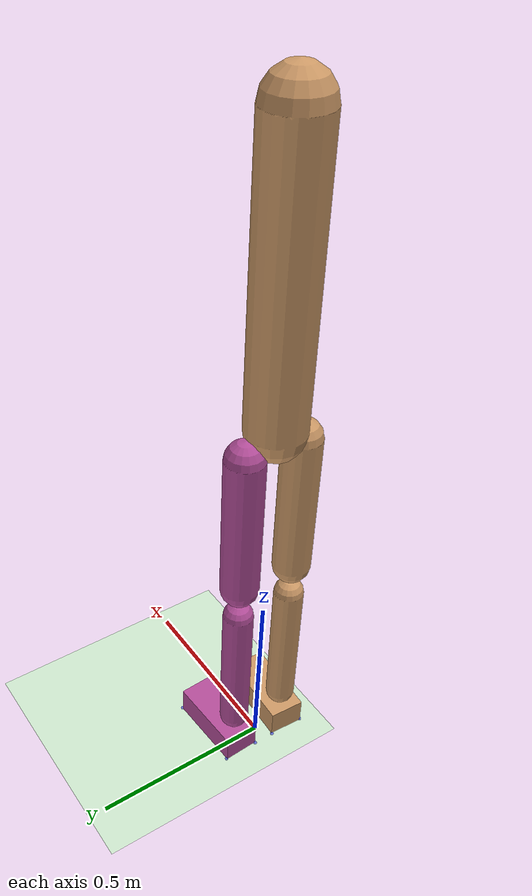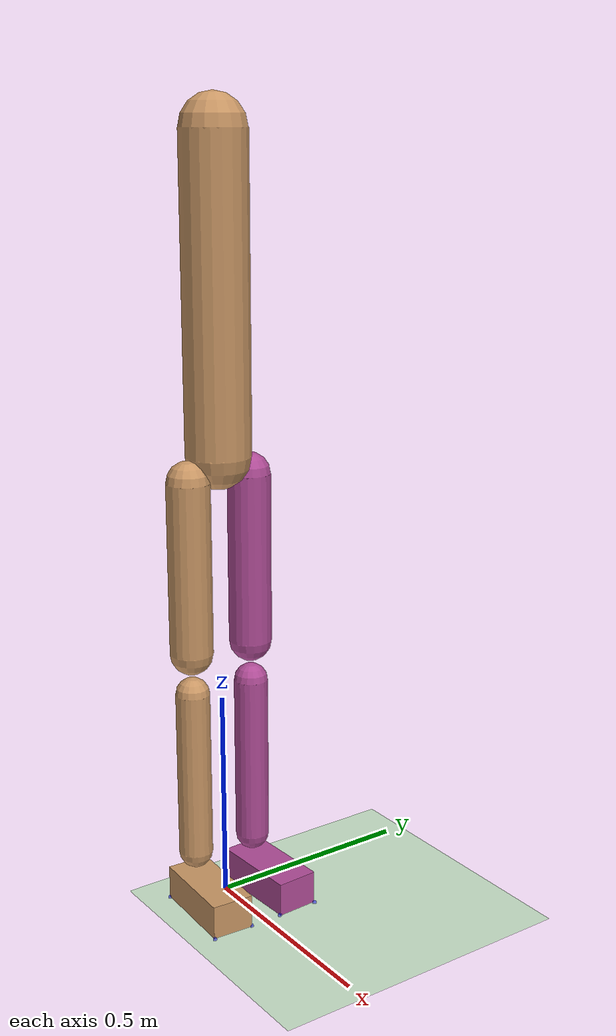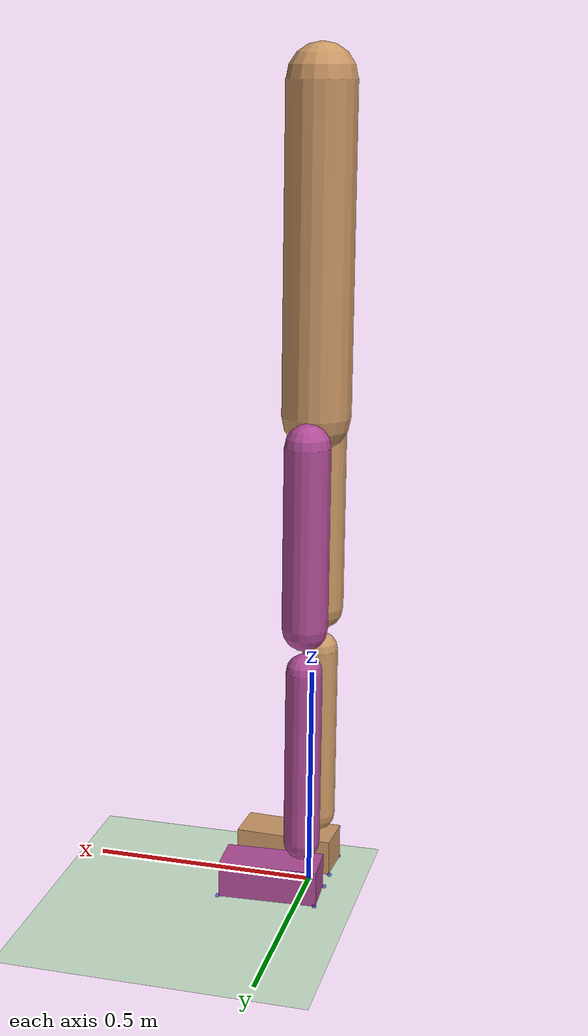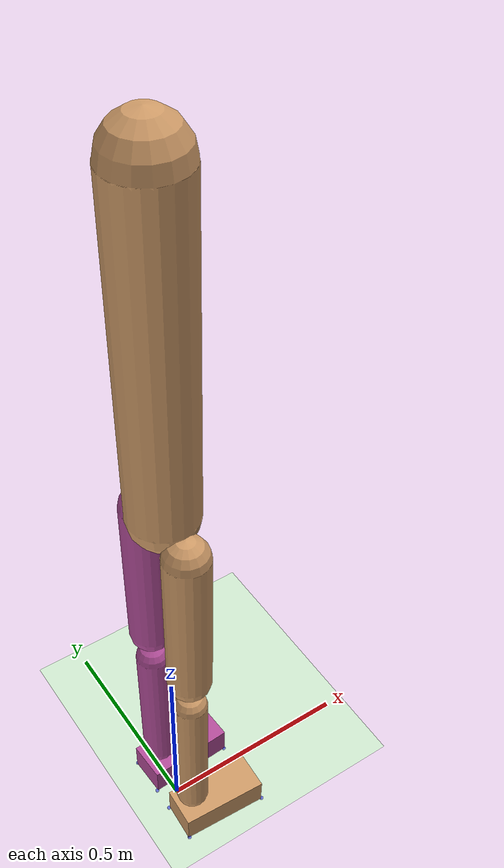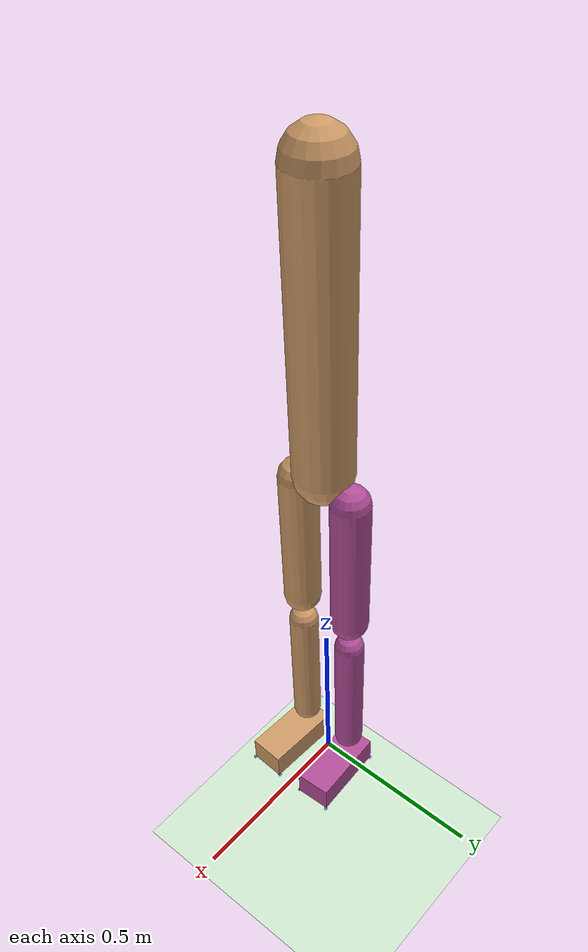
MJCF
<mujoco model="walker3d_hip3d">
  <compiler angle="radian" coordinate="local" inertiafromgeom="false"/>
  <visual>
	    <scale framelength='0.5' framewidth='0.0075' forcewidth='0.0075' contactwidth='0.1' contactheight='0.01'/>
  </visual>
  <default>
    <joint armature="0.01" limited="true" />
    <motor ctrllimited="true" ctrlrange="-300 300" gear="1" forcelimited="true" forcerange="-300 300"/>
    <geom conaffinity="0" condim="3" contype="1" density="1000" friction=".7 .1 .1" rgba="0.8 0.6 .4 1"/>
  </default>
  <option integrator="RK4" timestep="0.001"/>
  <worldbody>
    <light cutoff="100" diffuse="1 1 1" dir="-0 0 -1.3" directional="true" exponent="1" pos="0 0 1.3" specular=".1 .1 .1"/>
    <geom conaffinity="1" condim="3" name="floor" pos="0 0 0" rgba="0.8 0.9 0.8 1" size="40 40 0.125" type="plane" material="MatPlane"/>
    <body name="torso" pos="0 0 1.08">
      <inertial pos="0 0 0.35" mass="53.5" diaginertia="2.5 4.0 1.5"/>
      <camera name="track" mode="trackcom" pos="0 -4 0" xyaxes="1 0 0 0 0 1"/>
      <joint armature="0" axis="1 0 0" damping="0" limited="false" name="com_x" pos="0 0 0" stiffness="0" type="slide"/>
      <joint armature="0" axis="0 1 0" damping="0" limited="false" name="com_y" pos="0 0 0" stiffness="0" type="slide"/>
      <joint armature="0" axis="0 0 1" damping="0" limited="false" name="com_z" pos="0 0 -1.08" ref="1.08" stiffness="0" type="slide"/>
      <joint armature="0" axis="1 0 0" damping="0" limited="false" name="trunk_rot_x" pos="0 0 0" stiffness="0" type="hinge"/>
      <joint armature="0" axis="0 1 0" damping="0" limited="false" name="trunk_rot_y" pos="0 0 0" stiffness="0" type="hinge"/>
      <joint armature="0" axis="0 0 1" damping="0" limited="false" name="trunk_rot_z" pos="0 0 0" stiffness="0" type="hinge"/>
      <geom friction="0.9" fromto="0 0 0 0 0 0.7" name="torso_geom" size="0.075" type="capsule"/>
      <body name="right_thigh" pos="0 -0.08 0">
        <inertial pos="0 0 -0.2" mass="8.5" diaginertia="0.15 0.15 0.03"/>
        <joint axis="0 1 0" name="hip_joint_saggital_right" damping="28" range="-0.8727 0.8727" type="hinge"/>
        <joint axis="1 0 0" name="hip_joint_frontal_right" damping="28" range="-0.7854 0.0873" type="hinge"/>
        <joint axis="0 0 1" name="hip_joint_traversal_right" damping="28" range="-0.26 0.26" type="hinge"/>
        <geom friction="0.9" fromto="0 0 -0.05 0 0 -0.45" name="thigh_geom" size="0.05" type="capsule"/>
        <body name="right_shank" pos="0 0 -0.5">
          <inertial pos="0 0 -0.2" mass="3.5" diaginertia="0.05 0.05 0.003"/>
          <joint axis="0 1 0" name="knee_joint_right" damping="12" range="0. 2.6180" type="hinge"/>
          <geom friction="0.9" fromto="0 0 -0.05 0 0 -0.45" name="leg_geom" size="0.04" type="capsule"/>
          <body name="right_foot" pos="0 0 -0.5">
            <inertial pos="0.06 0 -0.07" mass="1.5" diaginertia="0.003 0.006 0.005"/>
            <joint axis="0 1 0" name="ankle_joint_right" damping="20"  range="-0.3491 0.6981" type="hinge"/>
            <geom friction="0.9" axisangle="0 0 1 -.05" name="right_foot" size="0.11 0.05 0.04" pos="0.0675 -0.005 -0.04" type="box"/>
            <site name='right_foot_front_left' type="sphere" size="0.005" pos="0.1775 0.04 -0.08" rgba="0 0 .99 0.5" />
            <site name='right_foot_front_right' type="sphere" size="0.005" pos="0.1775 -0.06 -0.08" rgba="0 0 .99 0.5" />
            <site name='right_foot_back_left' type="sphere" size="0.005" pos="-0.0425 0.05 -0.08" rgba="0 0 .99 0.5" />
            <site name='right_foot_back_right' type="sphere" size="0.005" pos="-0.0425 -0.05 -0.08" rgba="0 0 .99 0.5" />
          </body>
        </body>
      </body>
      <!-- copied and then replace thigh->thigh_left, leg->leg_left, foot->foot_right -->
      <body name="thigh_left" pos="0 0.08 0">
        <inertial pos="0 0 -0.2" mass="8.5" diaginertia="0.15 0.15 0.03"/>
        <joint axis="0 1 0" name="hip_joint_saggital_left" damping="28" range="-0.8727 0.8727" type="hinge"/>
        <joint axis="1 0 0" name="hip_joint_frontal_left" damping="28" range="-0.0873 0.7854" type="hinge"/>
        <joint axis="0 0 1" name="hip_joint_traversal_left" damping="28" range="-0.26 0.26" type="hinge"/>
        <geom friction="0.9" fromto="0 0 -0.05 0 0 -0.45" name="thigh_left_geom" rgba=".7 .3 .6 1" size="0.05" type="capsule"/>
        <body name="shank_left" pos="0 0 -0.5">
          <inertial pos="0 0 -0.2" mass="3.5" diaginertia="0.05 0.05 0.003"/>
          <joint axis="0 1 0" name="knee_left_joint" damping="12" range="0. 2.6180"  type="hinge"/>
          <geom friction="0.9" fromto="0 0 -0.05 0 0 -0.45" name="leg_left_geom" rgba=".7 .3 .6 1" size="0.04" type="capsule"/>
          <body name="foot_left" pos="0 0 -0.5">
            <inertial pos="0.06 0 -0.07" mass="1.5" diaginertia="0.003 0.006 0.005"/>
            <joint axis="0 1 0" name="ankle_left_joint" damping="20" range="-0.3491 0.6981" type="hinge"/>
            <geom friction="0.9" axisangle="0 0 1 .05" name="left_foot" size="0.11 0.05 0.04" pos="0.0675 0.005 -0.04" rgba=".7 .3 .6 1" type="box"/>
            <site name='left_foot_front_left' type="sphere" size="0.005" pos="0.1775 0.06 -0.08" rgba="0 0 .99 0.5" />
            <site name='left_foot_front_right' type="sphere" size="0.005" pos="0.1775 -0.04 -0.08" rgba="0 0 .99 0.5" />
            <site name='left_foot_back_left' type="sphere" size="0.005" pos="-0.0425 0.05 -0.08" rgba="0 0 .99 0.5" />
            <site name='left_foot_back_right' type="sphere" size="0.005" pos="-0.0425 -0.05 -0.08" rgba="0 0 .99 0.5" />
          </body>
        </body>
      </body>
    </body>
  </worldbody>
  <actuator>
    <motor joint="hip_joint_saggital_right"/>
    <motor joint="hip_joint_frontal_right"/>
    <motor joint="hip_joint_traversal_right"/>
    <motor joint="knee_joint_right"/>
    <motor joint="ankle_joint_right"/>
    <motor joint="hip_joint_saggital_left"/>
    <motor joint="hip_joint_frontal_left"/>
    <motor joint="hip_joint_traversal_left"/>
    <motor joint="knee_left_joint"/>
    <motor joint="ankle_left_joint"/>
  </actuator>
    <asset>
        <texture type="skybox" builtin="gradient" rgb1=".4 .5 .6" rgb2="0 0 0"
            width="100" height="100"/>
        <texture builtin="flat" height="1278" mark="cross" markrgb="1 1 1" name="texgeom" random="0.01" rgb1="0.8 0.6 0.4" rgb2="0.8 0.6 0.4" type="cube" width="127"/>
        <texture builtin="checker" height="100" name="texplane" rgb1="0 0 0" rgb2="0.8 0.8 0.8" type="2d" width="100"/>
        <material name="MatPlane" reflectance="0.5" shininess="1" specular="1" texrepeat="60 60" texture="texplane"/>
        <material name="geom" texture="texgeom" texuniform="true"/>
    </asset>
</mujoco>
